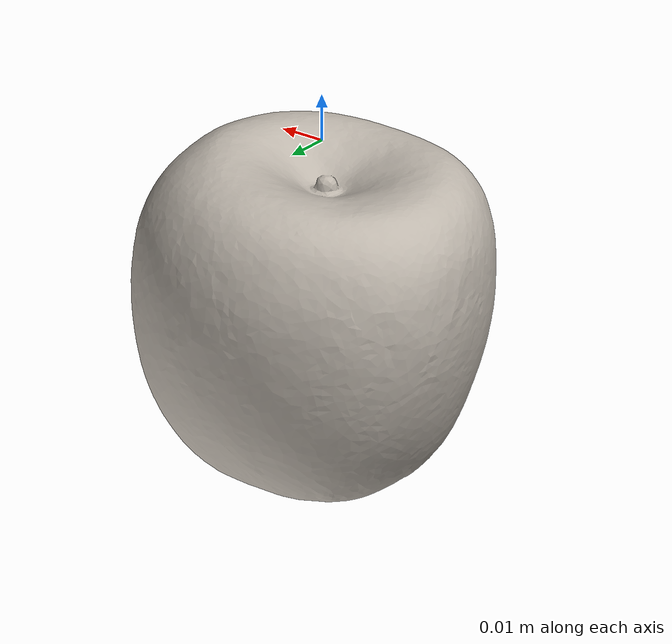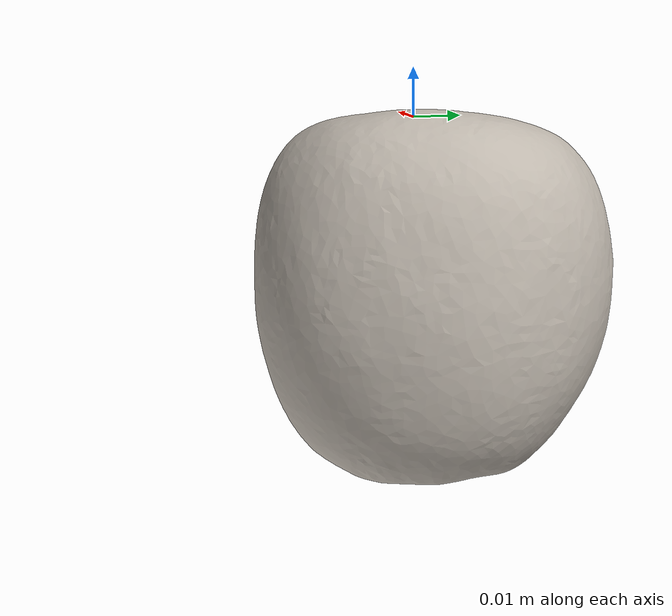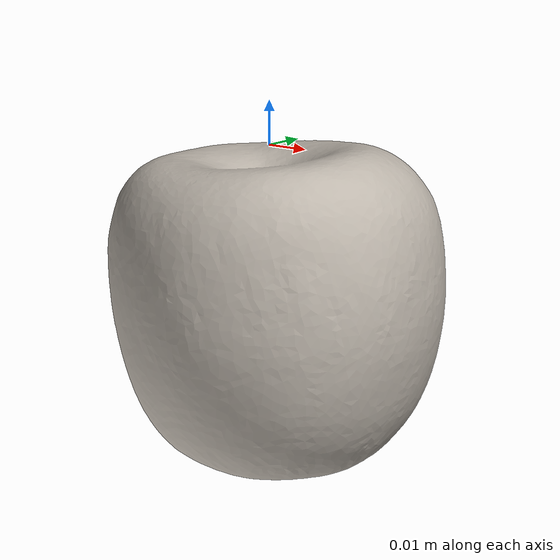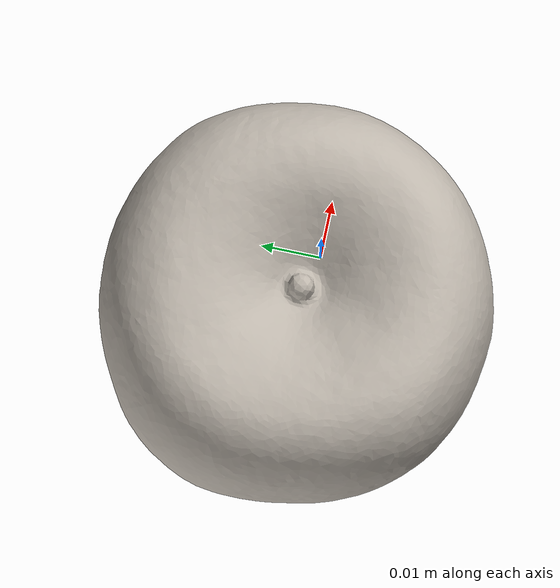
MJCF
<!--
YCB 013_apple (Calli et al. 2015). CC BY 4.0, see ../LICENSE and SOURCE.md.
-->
<mujoco model="ycb_013_apple">
  <compiler angle="radian" meshdir="." texturedir="."/>
  <asset>
    <texture name="apple" type="2d" file="texture_map.png"/>
    <material name="apple" texture="apple"/>
    <mesh name="apple" file="textured.obj"/>
  </asset>
  <worldbody>
    <body name="apple">
      <freejoint name="apple_free"/>
      <geom name="apple_visual" type="mesh" mesh="apple" material="apple" pos="-0.0009 0.0038 -0.0356"
            contype="0" conaffinity="0" group="2" mass="0"/>
      <geom name="apple_collision" type="mesh" mesh="apple" pos="-0.0009 0.0038 -0.0356" mass="0.068"
            group="3" condim="4" friction="0.9 0.005 0.0001"/>
    </body>
  </worldbody>
</mujoco>
